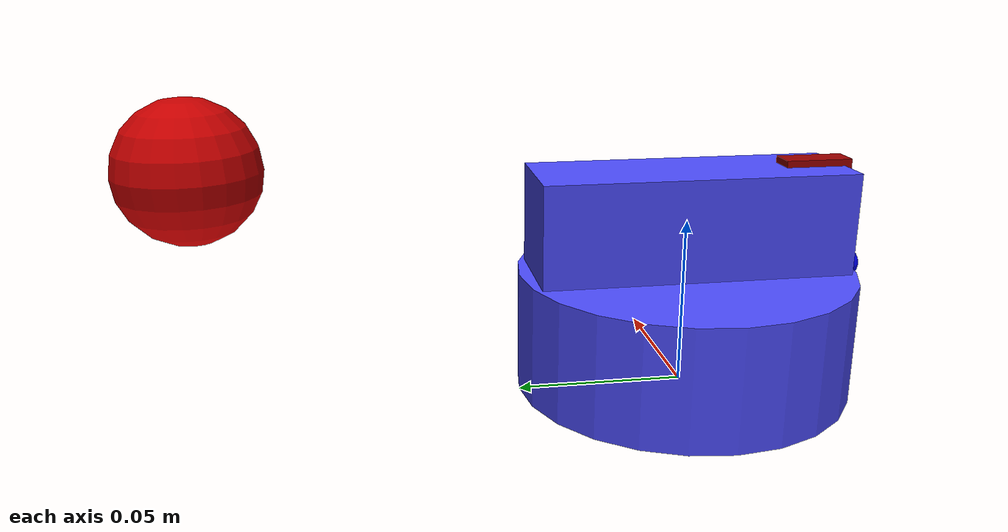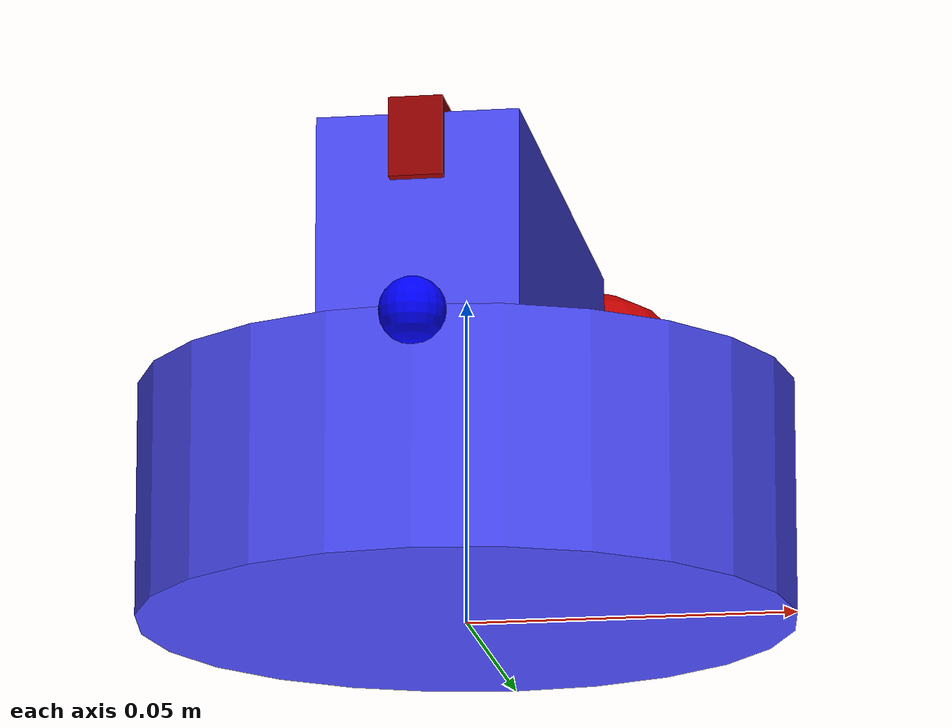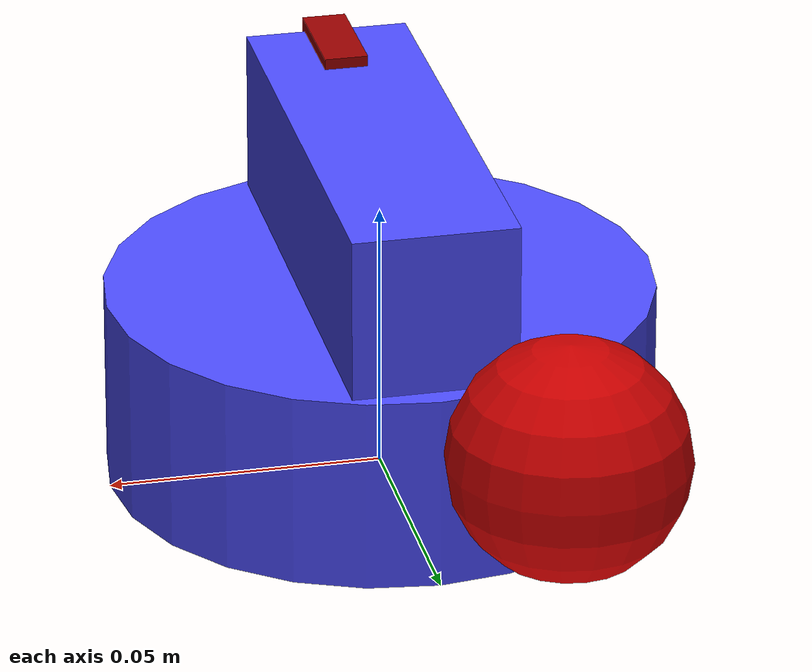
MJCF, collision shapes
<mujoco>
    <compiler angle="radian" inertiafromgeom="auto" inertiagrouprange="4 5"/>
    <asset>
        <texture name="T_dial" type="cube" file="../textures/metal1.png"/>

        <material name="dial_col" rgba="0.3 0.3 1.0 0.5" shininess="0" specular="0"/>
        <material name="dial_metal" texture="T_dial" rgba=".35 .35 .35 1" shininess="1" reflectance=".7" specular=".5"/>
        <material name="dial_red" rgba=".6 0 0 1" shininess="1" reflectance=".7" specular=".5"/>

        <mesh file="../objects/meshes/dial/dial.stl" name="dial"/>
        <mesh file="../objects/meshes/dial/dialhead.stl" name="dialhead"/>

    </asset>

    <default>
      <default class="dial_base">
          <joint armature="0.001" damping="1" limited="true"/>
          <geom conaffinity="0" contype="0" group="1" type="mesh"/>
          <position ctrllimited="true" ctrlrange="0 1.57"/>
          <default class="dial_viz">
              <geom condim="4" type="mesh"/>
          </default>
          <default class="dial_col">
              <geom conaffinity="1" condim="3" contype="0" group="4" material="dial_col" solimp="0.99 0.99 0.01" solref="0.01 1"/>
          </default>

      </default>
    </default>

    <worldbody>
            <body name="dial" childclass="dial_base">
                <joint name="knob_Joint_1" axis="0 0 1" type="hinge" limited="true" range="-3.14 3.14"/>

                <geom material="dial_metal" mesh="dial" pos="0 0 0.018"/>
                <geom material="dial_metal" mesh="dialhead" pos="0 0 0.051"/>
                <geom material="dial_red" pos="0 -0.038 0.062" size="0.004 0.01 0.006" type="box"/>

                <geom class="dial_col" pos="0 0 0.018" size="0.05 0.018" type="cylinder"/>
                <geom class="dial_col" pos="0 0 0.051" size="0.015 0.046 0.015" type="box"/>
                <site name="dial_tip" pos="0 -0.05 0.035" size=".005" rgba="1 0 0 1"/>
            </body>
            <site name="dialStart" pos="0 -0.05 0.035" size="0.005" rgba="0 0 1 1"/>

        <site name="goal" pos="0. 0.14 0.07" size="0.02"
              rgba=".8 0 0 1"/>

    </worldbody>
</mujoco>
